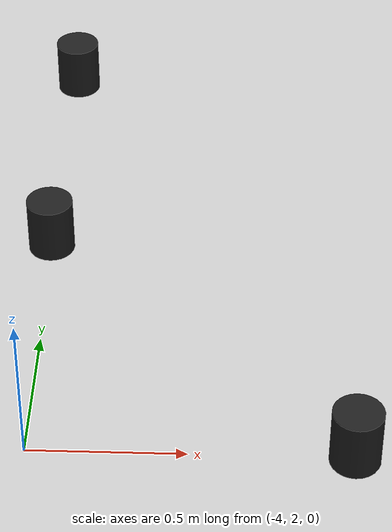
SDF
<sdf version="1.7">
 <world name="default">
  <model name="ground_plane">
   <static>1</static>
   <link name="link">
    <collision name="collision">
     <geometry><plane><normal>0 0 1</normal><size>100 100</size></plane></geometry>
     <surface>
      <contact><collide_bitmask>65535</collide_bitmask></contact>
      <friction><ode><mu>100</mu><mu2>50</mu2></ode></friction>
     </surface>
    </collision>
    <visual name="visual">
     <cast_shadows>0</cast_shadows>
     <geometry><plane><normal>0 0 1</normal><size>100 100</size></plane></geometry>
     <material>
      <script><uri>file://media/materials/scripts/gazebo.material</uri><name>Gazebo/Grey</name></script>
     </material>
    </visual>
   </link>
  </model>
  <model name="cylinder_clone_clone_0_clone">
   <link name="link">
    <inertial>
     <mass>1</mass>
     <inertia><ixx>0.145833</ixx><ixy>0</ixy><ixz>0</ixz><iyy>0.145833</iyy><iyz>0</iyz><izz>0.125</izz></inertia>
    </inertial>
    <visual name="visual">
     <geometry><cylinder><radius>0.08</radius><length>0.2</length></cylinder></geometry>
     <material>
      <script><name>Gazebo/Black</name><uri>file://media/materials/scripts/gazebo.material</uri></script>
      <shader type="vertex"><normal_map>__default__</normal_map></shader>
      <ambient>1 0 0 1</ambient>
      <diffuse>0.7 0.7 0.7 1</diffuse>
      <specular>0.01 0.01 0.01 1</specular>
      <emissive>0 0 0 1</emissive>
     </material>
    </visual>
    <collision name="collision">
     <geometry><cylinder><radius>0.08</radius><length>0.2</length></cylinder></geometry>
     <surface>
      <friction>
       <ode><mu>1</mu><mu2>1</mu2><fdir1>0 0 0</fdir1><slip1>0</slip1><slip2>0</slip2></ode>
       <torsional>
        <coefficient>1</coefficient>
        <patch_radius>0</patch_radius>
        <surface_radius>0</surface_radius>
        <use_patch_radius>1</use_patch_radius>
        <ode><slip>0</slip></ode>
       </torsional>
      </friction>
      <bounce><restitution_coefficient>0</restitution_coefficient><threshold>1e+06</threshold></bounce>
      <contact>
       <collide_without_contact>0</collide_without_contact>
       <collide_without_contact_bitmask>1</collide_without_contact_bitmask>
       <collide_bitmask>1</collide_bitmask>
       <ode>
        <soft_cfm>0</soft_cfm>
        <soft_erp>0.2</soft_erp>
        <kp>1e+13</kp>
        <kd>1</kd>
        <max_vel>0.01</max_vel>
        <min_depth>0</min_depth>
       </ode>
       <bullet>
        <split_impulse>1</split_impulse>
        <split_impulse_penetration_threshold>-0.01</split_impulse_penetration_threshold>
        <soft_cfm>0</soft_cfm>
        <soft_erp>0.2</soft_erp>
        <kp>1e+13</kp>
        <kd>1</kd>
       </bullet>
      </contact>
     </surface>
    </collision>
   </link>
   <static>1</static>
   <pose>-2.99178 1.99426 0.1 0 -0 0</pose>
  </model>
  <model name="cylinder_clone_clone_0_clone_clone_0_clone_clone_clone_clone_clone">
   <link name="link">
    <inertial>
     <mass>1</mass>
     <inertia><ixx>0.145833</ixx><ixy>0</ixy><ixz>0</ixz><iyy>0.145833</iyy><iyz>0</iyz><izz>0.125</izz></inertia>
    </inertial>
    <visual name="visual">
     <geometry><cylinder><radius>0.08</radius><length>0.2</length></cylinder></geometry>
     <material>
      <script><name>Gazebo/Black</name><uri>file://media/materials/scripts/gazebo.material</uri></script>
      <shader type="vertex"><normal_map>__default__</normal_map></shader>
      <ambient>1 0 0 1</ambient>
      <diffuse>0.7 0.7 0.7 1</diffuse>
      <specular>0.01 0.01 0.01 1</specular>
      <emissive>0 0 0 1</emissive>
     </material>
    </visual>
    <collision name="collision">
     <geometry><cylinder><radius>0.08</radius><length>0.2</length></cylinder></geometry>
     <surface>
      <friction>
       <ode><mu>1</mu><mu2>1</mu2><fdir1>0 0 0</fdir1><slip1>0</slip1><slip2>0</slip2></ode>
       <torsional>
        <coefficient>1</coefficient>
        <patch_radius>0</patch_radius>
        <surface_radius>0</surface_radius>
        <use_patch_radius>1</use_patch_radius>
        <ode><slip>0</slip></ode>
       </torsional>
      </friction>
      <bounce><restitution_coefficient>0</restitution_coefficient><threshold>1e+06</threshold></bounce>
      <contact>
       <collide_without_contact>0</collide_without_contact>
       <collide_without_contact_bitmask>1</collide_without_contact_bitmask>
       <collide_bitmask>1</collide_bitmask>
       <ode>
        <soft_cfm>0</soft_cfm>
        <soft_erp>0.2</soft_erp>
        <kp>1e+13</kp>
        <kd>1</kd>
        <max_vel>0.01</max_vel>
        <min_depth>0</min_depth>
       </ode>
       <bullet>
        <split_impulse>1</split_impulse>
        <split_impulse_penetration_threshold>-0.01</split_impulse_penetration_threshold>
        <soft_cfm>0</soft_cfm>
        <soft_erp>0.2</soft_erp>
        <kp>1e+13</kp>
        <kd>1</kd>
       </bullet>
      </contact>
     </surface>
    </collision>
   </link>
   <static>1</static>
   <pose>-3.99677 3.98976 0.1 0 -0 0</pose>
  </model>
  <model name="cylinder_clone_clone_clone_clone_clone_clone_clone_clone_14">
   <link name="link">
    <inertial>
     <mass>1</mass>
     <inertia><ixx>0.145833</ixx><ixy>0</ixy><ixz>0</ixz><iyy>0.145833</iyy><iyz>0</iyz><izz>0.125</izz></inertia>
    </inertial>
    <visual name="visual">
     <geometry><cylinder><radius>0.08</radius><length>0.2</length></cylinder></geometry>
     <material>
      <script><name>Gazebo/Black</name><uri>file://media/materials/scripts/gazebo.material</uri></script>
      <shader type="vertex"><normal_map>__default__</normal_map></shader>
      <ambient>1 0 0 1</ambient>
      <diffuse>0.7 0.7 0.7 1</diffuse>
      <specular>0.01 0.01 0.01 1</specular>
      <emissive>0 0 0 1</emissive>
     </material>
    </visual>
    <collision name="collision">
     <geometry><cylinder><radius>0.08</radius><length>0.2</length></cylinder></geometry>
     <surface>
      <friction>
       <ode><mu>1</mu><mu2>1</mu2><fdir1>0 0 0</fdir1><slip1>0</slip1><slip2>0</slip2></ode>
       <torsional>
        <coefficient>1</coefficient>
        <patch_radius>0</patch_radius>
        <surface_radius>0</surface_radius>
        <use_patch_radius>1</use_patch_radius>
        <ode><slip>0</slip></ode>
       </torsional>
      </friction>
      <bounce><restitution_coefficient>0</restitution_coefficient><threshold>1e+06</threshold></bounce>
      <contact>
       <collide_without_contact>0</collide_without_contact>
       <collide_without_contact_bitmask>1</collide_without_contact_bitmask>
       <collide_bitmask>1</collide_bitmask>
       <ode>
        <soft_cfm>0</soft_cfm>
        <soft_erp>0.2</soft_erp>
        <kp>1e+13</kp>
        <kd>1</kd>
        <max_vel>0.01</max_vel>
        <min_depth>0</min_depth>
       </ode>
       <bullet>
        <split_impulse>1</split_impulse>
        <split_impulse_penetration_threshold>-0.01</split_impulse_penetration_threshold>
        <soft_cfm>0</soft_cfm>
        <soft_erp>0.2</soft_erp>
        <kp>1e+13</kp>
        <kd>1</kd>
       </bullet>
      </contact>
     </surface>
    </collision>
   </link>
   <static>1</static>
   <pose>-4.00887 2.98546 0.1 0 -0 0</pose>
  </model>
 </world>
</sdf>
